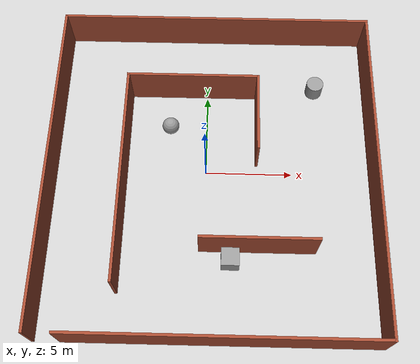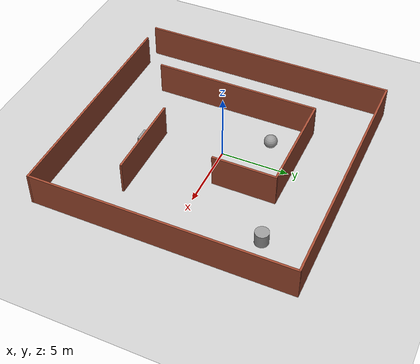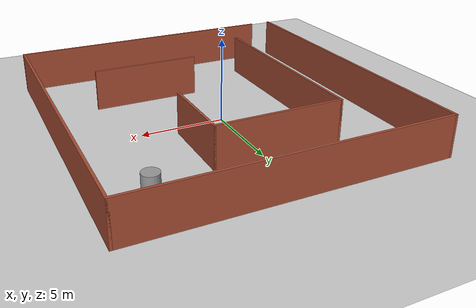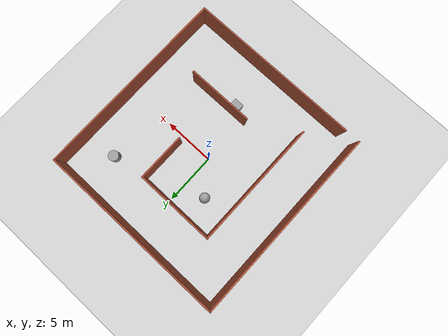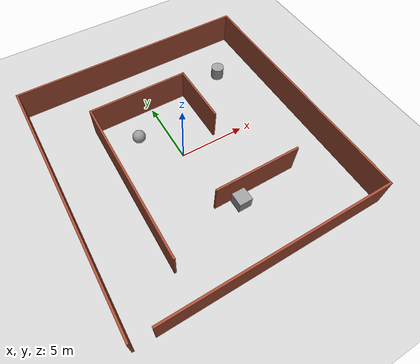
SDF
<sdf version="1.7">
 <world name="default">
  <light name="sun" type="directional">
   <pose>0 0 10 0 -0 0</pose>
   <diffuse>0.8 0.8 0.8 1</diffuse>
   <specular>0.2 0.2 0.2 1</specular>
   <attenuation>
    <range>1000</range>
    <constant>0.9</constant>
    <linear>0.01</linear>
    <quadratic>0.001</quadratic>
   </attenuation>
   <direction>-0.5 0.1 -0.9</direction>
   <spot><inner_angle>0</inner_angle><outer_angle>0</outer_angle><falloff>0</falloff></spot>
  </light>
  <model name="ground_plane">
   <static>1</static>
   <link name="link">
    <collision name="collision">
     <geometry><plane><normal>0 0 1</normal><size>100 100</size></plane></geometry>
     <surface>
      <contact><collide_bitmask>65535</collide_bitmask></contact>
      <friction><ode><mu>100</mu><mu2>50</mu2></ode></friction>
     </surface>
    </collision>
    <visual name="visual">
     <cast_shadows>0</cast_shadows>
     <geometry><plane><normal>0 0 1</normal><size>100 100</size></plane></geometry>
     <material>
      <script><uri>file://media/materials/scripts/gazebo.material</uri><name>Gazebo/Grey</name></script>
     </material>
    </visual>
   </link>
  </model>
  <gravity>0 0 -9.8</gravity>
  <magnetic_field>6e-06 2.3e-05 -4.2e-05</magnetic_field>
  <atmosphere type="adiabatic"/>
  <physics type="ode">
   <max_step_size>0.001</max_step_size>
   <real_time_factor>1</real_time_factor>
   <real_time_update_rate>1000</real_time_update_rate>
  </physics>
  <scene><ambient>0.4 0.4 0.4 1</ambient><background>0.7 0.7 0.7 1</background><shadows>1</shadows></scene>
  <audio><device>default</device></audio>
  <spherical_coordinates>
   <surface_model>EARTH_WGS84</surface_model>
   <latitude_deg>0</latitude_deg>
   <longitude_deg>0</longitude_deg>
   <elevation>0</elevation>
   <heading_deg>0</heading_deg>
  </spherical_coordinates>
  <model name="world2">
   <pose>0.40481 -0.233355 0 0 -0 0</pose>
   <link name="Wall_14">
    <collision name="Wall_14_Collision">
     <geometry><box><size>19.25 0.15 2.5</size></box></geometry>
     <pose>0 0 1.25 0 -0 0</pose>
    </collision>
    <visual name="Wall_14_Visual">
     <pose>0 0 1.25 0 -0 0</pose>
     <geometry><box><size>19.25 0.15 2.5</size></box></geometry>
     <material>
      <script><uri>file://media/materials/scripts/gazebo.material</uri><name>Gazebo/Bricks</name></script>
      <ambient>1 1 1 1</ambient>
     </material>
     <meta><layer>0</layer></meta>
    </visual>
    <pose>-9.175 0 0 0 -0 -1.5708</pose>
   </link>
   <link name="Wall_16">
    <collision name="Wall_16_Collision">
     <geometry><box><size>12.5 0.15 2.5</size></box></geometry>
     <pose>0 0 1.25 0 -0 0</pose>
    </collision>
    <visual name="Wall_16_Visual">
     <pose>0 0 1.25 0 -0 0</pose>
     <geometry><box><size>12.5 0.15 2.5</size></box></geometry>
     <material>
      <script><uri>file://media/materials/scripts/gazebo.material</uri><name>Gazebo/Bricks</name></script>
      <ambient>1 1 1 1</ambient>
     </material>
     <meta><layer>0</layer></meta>
    </visual>
    <pose>-5.05263 -0.737078 0 0 -0 1.5708</pose>
   </link>
   <link name="Wall_17">
    <collision name="Wall_17_Collision">
     <geometry><box><size>7.75 0.15 2.5</size></box></geometry>
     <pose>0 0 1.25 0 -0 0</pose>
    </collision>
    <visual name="Wall_17_Visual">
     <pose>0 0 1.25 0 -0 0</pose>
     <geometry><box><size>7.75 0.15 2.5</size></box></geometry>
     <material>
      <script><uri>file://media/materials/scripts/gazebo.material</uri><name>Gazebo/Bricks</name></script>
      <ambient>1 1 1 1</ambient>
     </material>
     <meta><layer>0</layer></meta>
    </visual>
    <pose>-1.25263 5.43792 0 0 -0 0</pose>
   </link>
   <link name="Wall_18">
    <collision name="Wall_18_Collision">
     <geometry><box><size>4.75 0.15 2.5</size></box></geometry>
     <pose>0 0 1.25 0 -0 0</pose>
    </collision>
    <visual name="Wall_18_Visual">
     <pose>0 0 1.25 0 -0 0</pose>
     <geometry><box><size>4.75 0.15 2.5</size></box></geometry>
     <material>
      <script><uri>file://media/materials/scripts/gazebo.material</uri><name>Gazebo/Bricks</name></script>
      <ambient>1 1 1 1</ambient>
     </material>
     <meta><layer>0</layer></meta>
    </visual>
    <pose>2.54737 3.13792 0 0 -0 -1.5708</pose>
   </link>
   <link name="Wall_20">
    <collision name="Wall_20_Collision">
     <geometry><box><size>6.5 0.15 2.5</size></box></geometry>
     <pose>0 0 1.25 0 -0 0</pose>
    </collision>
    <visual name="Wall_20_Visual">
     <pose>0 0 1.25 0 -0 0</pose>
     <geometry><box><size>6.5 0.15 2.5</size></box></geometry>
     <material>
      <script><uri>file://media/materials/scripts/gazebo.material</uri><name>Gazebo/Bricks</name></script>
      <ambient>1 1 1 1</ambient>
     </material>
     <meta><layer>0</layer></meta>
    </visual>
    <pose>2.57048 -4.45784 0 0 -0 0</pose>
   </link>
   <link name="Wall_7">
    <collision name="Wall_7_Collision">
     <geometry><box><size>18.5 0.15 2.5</size></box></geometry>
     <pose>0 0 1.25 0 -0 0</pose>
    </collision>
    <visual name="Wall_7_Visual">
     <pose>0 0 1.25 0 -0 0</pose>
     <geometry><box><size>18.5 0.15 2.5</size></box></geometry>
     <material>
      <script><uri>file://media/materials/scripts/gazebo.material</uri><name>Gazebo/Bricks</name></script>
      <ambient>1 1 1 1</ambient>
     </material>
     <meta><layer>0</layer></meta>
    </visual>
    <pose>0 9.55 0 0 -0 0</pose>
   </link>
   <link name="Wall_8">
    <collision name="Wall_8_Collision">
     <geometry><box><size>19.25 0.15 2.5</size></box></geometry>
     <pose>0 0 1.25 0 -0 0</pose>
    </collision>
    <visual name="Wall_8_Visual">
     <pose>0 0 1.25 0 -0 0</pose>
     <geometry><box><size>19.25 0.15 2.5</size></box></geometry>
     <material>
      <script><uri>file://media/materials/scripts/gazebo.material</uri><name>Gazebo/Bricks</name></script>
      <ambient>1 1 1 1</ambient>
     </material>
     <meta><layer>0</layer></meta>
    </visual>
    <pose>9.175 0 0 0 -0 -1.5708</pose>
   </link>
   <link name="Wall_9">
    <collision name="Wall_9_Collision">
     <geometry><box><size>17 0.15 2.5</size></box></geometry>
     <pose>0 0 1.25 0 -0 0</pose>
    </collision>
    <visual name="Wall_9_Visual">
     <pose>0 0 1.25 0 -0 0</pose>
     <geometry><box><size>17 0.15 2.5</size></box></geometry>
     <material>
      <script><uri>file://media/materials/scripts/gazebo.material</uri><name>Gazebo/Bricks</name></script>
      <ambient>1 1 1 1</ambient>
     </material>
     <meta><layer>0</layer></meta>
    </visual>
    <pose>0.75 -9.55 0 0 -0 3.14159</pose>
   </link>
   <static>1</static>
  </model>
  <model name="unit_sphere">
   <pose>-2.15443 2.87217 0.5 0 -0 0</pose>
   <link name="link">
    <inertial>
     <mass>1</mass>
     <inertia><ixx>0.1</ixx><ixy>0</ixy><ixz>0</ixz><iyy>0.1</iyy><iyz>0</iyz><izz>0.1</izz></inertia>
    </inertial>
    <collision name="collision"><geometry><sphere><radius>0.5</radius></sphere></geometry></collision>
    <visual name="visual">
     <geometry><sphere><radius>0.5</radius></sphere></geometry>
     <material>
      <script><name>Gazebo/Grey</name><uri>file://media/materials/scripts/gazebo.material</uri></script>
     </material>
    </visual>
   </link>
  </model>
  <model name="unit_cylinder">
   <pose>6.50913 5.69787 0.499998 3e-06 -2e-06 0</pose>
   <link name="link">
    <inertial>
     <mass>1</mass>
     <inertia><ixx>0.145833</ixx><ixy>0</ixy><ixz>0</ixz><iyy>0.145833</iyy><iyz>0</iyz><izz>0.125</izz></inertia>
    </inertial>
    <collision name="collision">
     <geometry><cylinder><radius>0.5</radius><length>1</length></cylinder></geometry>
    </collision>
    <visual name="visual">
     <geometry><cylinder><radius>0.5</radius><length>1</length></cylinder></geometry>
     <material>
      <script><name>Gazebo/Grey</name><uri>file://media/materials/scripts/gazebo.material</uri></script>
     </material>
    </visual>
   </link>
  </model>
  <model name="unit_box">
   <pose>1.47809 -5.29167 0.499995 -1e-05 -0 -0</pose>
   <link name="link">
    <inertial>
     <mass>1</mass>
     <inertia>
      <ixx>0.166667</ixx>
      <ixy>0</ixy>
      <ixz>0</ixz>
      <iyy>0.166667</iyy>
      <iyz>0</iyz>
      <izz>0.166667</izz>
     </inertia>
    </inertial>
    <collision name="collision"><geometry><box><size>1 1 1</size></box></geometry></collision>
    <visual name="visual">
     <geometry><box><size>1 1 1</size></box></geometry>
     <material>
      <script><name>Gazebo/Grey</name><uri>file://media/materials/scripts/gazebo.material</uri></script>
     </material>
    </visual>
   </link>
  </model>
 </world>
</sdf>
